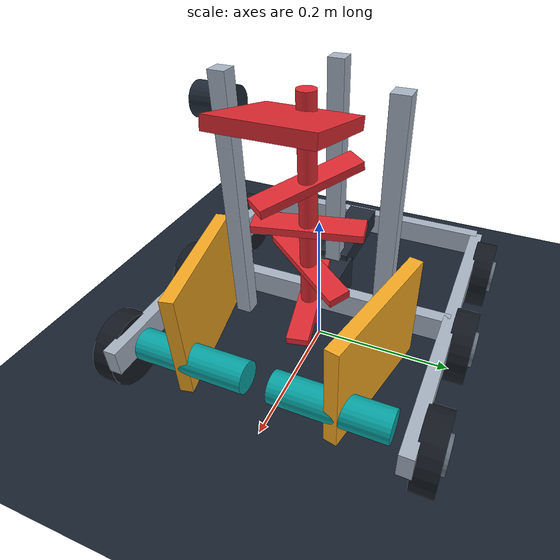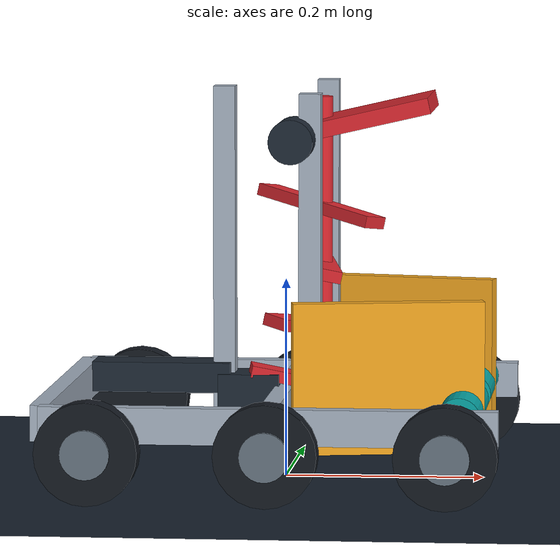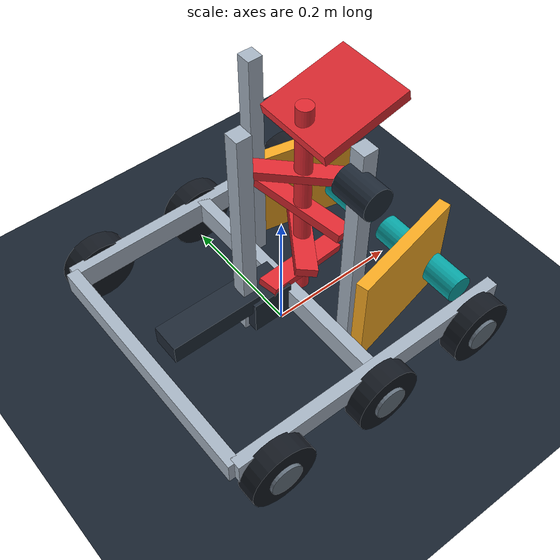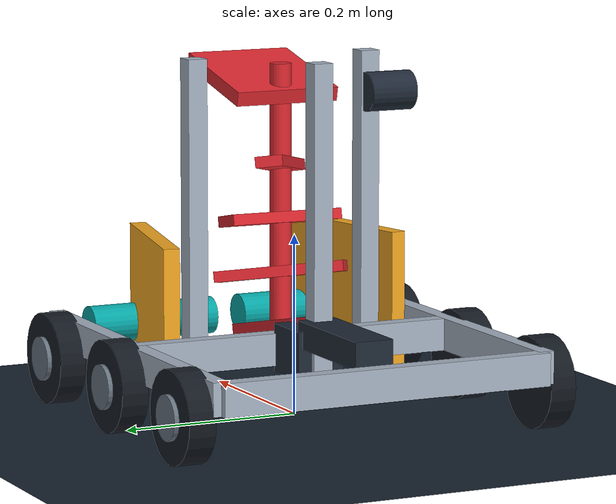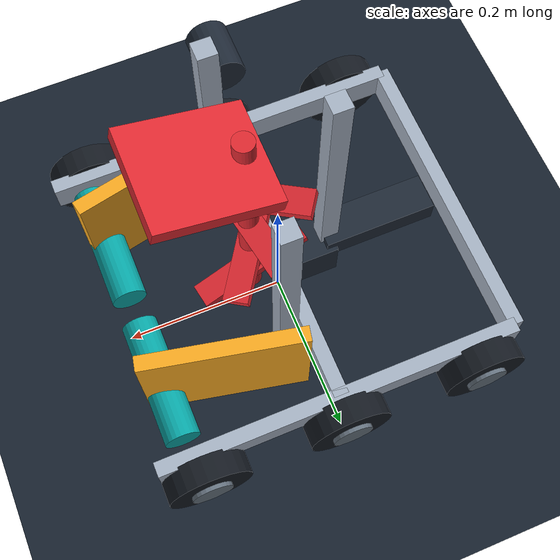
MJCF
<mujoco model="Helical Paddle Pin Riser"><compiler angle="degree" /><visual><global offwidth="800" offheight="600" /><quality offsamples="0" /><headlight ambient=".45 .45 .45" /></visual><worldbody><light pos="0 -1 3" castshadow="false" /><geom type="plane" size="2 2 .1" rgba=".09 .13 .18 1" /><geom type="box" pos="0 -0.19 0.0758" size="0.225 0.009 0.018" euler="0 0 0" rgba=".65 .7 .76 1" contype="0" conaffinity="0" /><geom type="box" pos="0 0.19 0.0758" size="0.225 0.009 0.018" euler="0 0 0" rgba=".65 .7 .76 1" contype="0" conaffinity="0" /><geom type="box" pos="-0.225 0 0.0758" size="0.009 0.19 0.018" euler="0 0 0" rgba=".65 .7 .76 1" contype="0" conaffinity="0" /><geom type="box" pos="0 0 0.0758" size="0.009 0.19 0.018" euler="0 0 0" rgba=".65 .7 .76 1" contype="0" conaffinity="0" /><geom type="cylinder" pos="-0.175 -0.211 0.0508" size="0.0508 0.015" euler="90 0 0" rgba=".08 .1 .13 1" contype="0" conaffinity="0" /><geom type="cylinder" pos="-0.175 -0.228 0.0508" size="0.024384 0.003" euler="90 0 0" rgba=".4 .45 .5 1" contype="0" conaffinity="0" /><geom type="cylinder" pos="0.0 -0.211 0.0508" size="0.0508 0.015" euler="90 0 0" rgba=".08 .1 .13 1" contype="0" conaffinity="0" /><geom type="cylinder" pos="0.0 -0.228 0.0508" size="0.024384 0.003" euler="90 0 0" rgba=".4 .45 .5 1" contype="0" conaffinity="0" /><geom type="cylinder" pos="0.175 -0.211 0.0508" size="0.0508 0.015" euler="90 0 0" rgba=".08 .1 .13 1" contype="0" conaffinity="0" /><geom type="cylinder" pos="0.175 -0.228 0.0508" size="0.024384 0.003" euler="90 0 0" rgba=".4 .45 .5 1" contype="0" conaffinity="0" /><geom type="cylinder" pos="-0.175 0.211 0.0508" size="0.0508 0.015" euler="90 0 0" rgba=".08 .1 .13 1" contype="0" conaffinity="0" /><geom type="cylinder" pos="-0.175 0.228 0.0508" size="0.024384 0.003" euler="90 0 0" rgba=".4 .45 .5 1" contype="0" conaffinity="0" /><geom type="cylinder" pos="0.0 0.211 0.0508" size="0.0508 0.015" euler="90 0 0" rgba=".08 .1 .13 1" contype="0" conaffinity="0" /><geom type="cylinder" pos="0.0 0.228 0.0508" size="0.024384 0.003" euler="90 0 0" rgba=".4 .45 .5 1" contype="0" conaffinity="0" /><geom type="cylinder" pos="0.175 0.211 0.0508" size="0.0508 0.015" euler="90 0 0" rgba=".08 .1 .13 1" contype="0" conaffinity="0" /><geom type="cylinder" pos="0.175 0.228 0.0508" size="0.024384 0.003" euler="90 0 0" rgba=".4 .45 .5 1" contype="0" conaffinity="0" /><geom type="box" pos="-0.125 0.0 0.1008" size="0.07 0.022 0.015" euler="0 0 0" rgba=".12 .16 .21 1" contype="0" conaffinity="0" /><geom type="cylinder" pos="0.185 0.092 0.082" size="0.021 0.075" euler="90.0 0.0 0.0" rgba=".03 .65 .65 1" contype="0" conaffinity="0" /><geom type="cylinder" pos="0.185 -0.092 0.082" size="0.021 0.075" euler="90.0 0.0 0.0" rgba=".03 .65 .65 1" contype="0" conaffinity="0" /><geom type="box" pos="0.112 0.118 0.116" size="0.095 0.009 0.075" euler="0.0 0.0 -12.0" rgba=".96 .66 .13 1" contype="0" conaffinity="0" /><geom type="box" pos="0.112 -0.118 0.116" size="0.095 0.009 0.075" euler="0.0 0.0 12.0" rgba=".96 .66 .13 1" contype="0" conaffinity="0" /><geom type="cylinder" pos="0.035 0.0 0.22" size="0.012 0.165" euler="0.0 0.0 0.0" rgba=".87 .16 .19 1" contype="0" conaffinity="0" /><geom type="box" pos="0.035 0.0 0.094" size="0.0725 0.015 0.006" euler="0.0 12.0 10.0" rgba=".87 .16 .19 1" contype="0" conaffinity="0" /><geom type="box" pos="0.035 0.0 0.154" size="0.0725 0.015 0.006" euler="0.0 12.0 55.0" rgba=".87 .16 .19 1" contype="0" conaffinity="0" /><geom type="box" pos="0.035 0.0 0.214" size="0.0725 0.015 0.006" euler="0.0 12.0 100.0" rgba=".87 .16 .19 1" contype="0" conaffinity="0" /><geom type="box" pos="0.035 0.0 0.274" size="0.0725 0.015 0.006" euler="0.0 12.0 145.0" rgba=".87 .16 .19 1" contype="0" conaffinity="0" /><geom type="box" pos="0.034 0.104 0.22" size="0.011 0.011 0.175" euler="0.0 0.0 0.0" rgba=".65 .7 .76 1" contype="0" conaffinity="0" /><geom type="box" pos="0.034 -0.104 0.22" size="0.011 0.011 0.175" euler="0.0 0.0 0.0" rgba=".65 .7 .76 1" contype="0" conaffinity="0" /><geom type="box" pos="-0.062 0.0 0.22" size="0.011 0.011 0.175" euler="0.0 0.0 0.0" rgba=".65 .7 .76 1" contype="0" conaffinity="0" /><geom type="box" pos="0.082 0.0 0.365" size="0.0675 0.06 0.008" euler="0.0 -13.0 0.0" rgba=".87 .16 .19 1" contype="0" conaffinity="0" /><geom type="box" pos="-0.036 0.0 0.078" size="0.031 0.027 0.027" euler="0.0 0.0 0.0" rgba=".12 .16 .21 1" contype="0" conaffinity="0" /><geom type="cylinder" pos="0.018 -0.122 0.35" size="0.022 0.027" euler="90.0 0.0 0.0" rgba=".12 .16 .21 1" contype="0" conaffinity="0" /></worldbody></mujoco>
